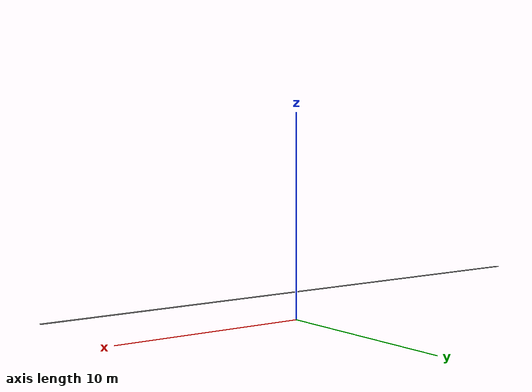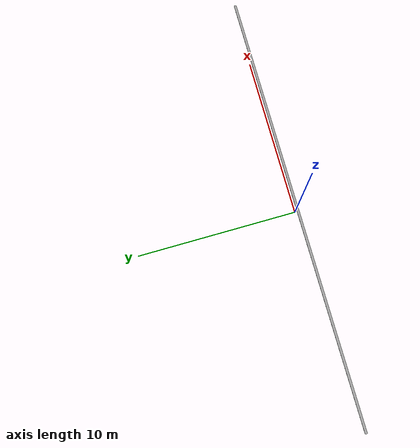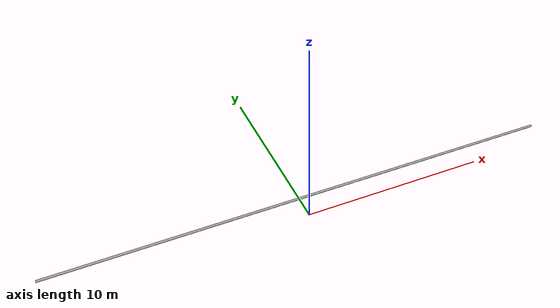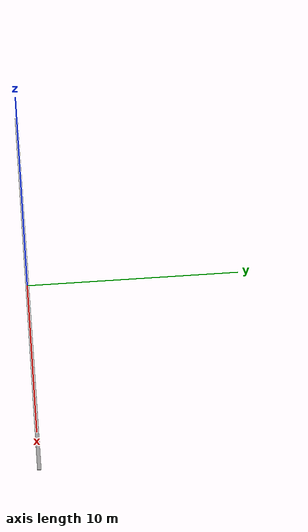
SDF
<?xml version="1.0" ?>
<sdf version="1.5">
  <model name='tray'>
    <link name='link_0'>
      <inertial>
        <mass>0.019881</mass>
        <inertia>
          <ixx>4.769e-05</ixx>
          <ixy>0</ixy>
          <ixz>0</ixz>
          <iyy>0.0103713</iyy>
          <iyz>0</iyz>
          <izz>0.0104111</izz>
        </inertia>
        <pose frame=''>0 0 0 0 -0 0</pose>
      </inertial>
      <pose frame=''>0 0 0 0 -0 0</pose>
      <gravity>1</gravity>
      <self_collide>0</self_collide>
      <kinematic>0</kinematic>
      <enable_wind>0</enable_wind>
      <visual name='visual'>
        <pose frame=''>0 0 1.38235 0 -0 0</pose>
        <geometry>
          <box>
            <size>27.09 0.15 0.02</size>
          </box>
        </geometry>
        <material>
          <lighting>1</lighting>
          <script>
            <uri>file://media/materials/scripts/gazebo.material</uri>
            <name>Gazebo/Grey</name>
          </script>
          <shader type='vertex'>
            <normal_map>__default__</normal_map>
          </shader>
          <ambient>0.3 0.3 0.3 1</ambient>
          <diffuse>0.3 0.3 0.3 1</diffuse>
          <specular>0.01 0.01 0.01 1</specular>
          <emissive>0 0 0 1</emissive>
        </material>
        <transparency>0</transparency>
        <cast_shadows>1</cast_shadows>
      </visual>
      <collision name='collision'>
        <laser_retro>0</laser_retro>
        <max_contacts>10</max_contacts>
        <pose frame=''>0 0 1.38235 0 -0 0</pose>
        <geometry>
          <box>
            <size>27.09 0.15 0.02</size>
          </box>
        </geometry>
        <surface>
          <friction>
            <ode>
              <mu>1</mu>
              <mu2>1</mu2>
              <fdir1>0 0 0</fdir1>
              <slip1>0</slip1>
              <slip2>0</slip2>
            </ode>
            <torsional>
              <coefficient>1</coefficient>
              <patch_radius>0</patch_radius>
              <surface_radius>0</surface_radius>
              <use_patch_radius>1</use_patch_radius>
              <ode>
                <slip>0</slip>
              </ode>
            </torsional>
          </friction>
          <bounce>
            <restitution_coefficient>0</restitution_coefficient>
            <threshold>1e+06</threshold>
          </bounce>
          <contact>
            <collide_without_contact>0</collide_without_contact>
            <collide_without_contact_bitmask>1</collide_without_contact_bitmask>
            <collide_bitmask>1</collide_bitmask>
            <ode>
              <soft_cfm>0</soft_cfm>
              <soft_erp>0.2</soft_erp>
              <kp>1e+13</kp>
              <kd>1</kd>
              <max_vel>0.01</max_vel>
              <min_depth>0</min_depth>
            </ode>
            <bullet>
              <split_impulse>1</split_impulse>
              <split_impulse_penetration_threshold>-0.01</split_impulse_penetration_threshold>
              <soft_cfm>0</soft_cfm>
              <soft_erp>0.2</soft_erp>
              <kp>1e+13</kp>
              <kd>1</kd>
            </bullet>
          </contact>
        </surface>
      </collision>
    </link>
    <static>1</static>
    <allow_auto_disable>1</allow_auto_disable>
  </model>
</sdf>
